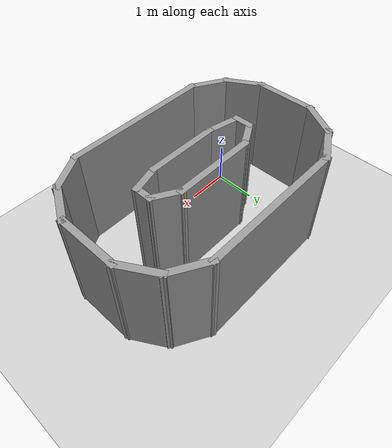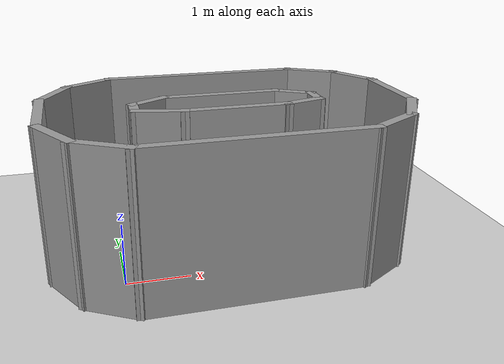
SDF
<sdf version="1.7">
 <world name="default">
  <light name="sun" type="directional">
   <pose>0 0 10 0 -0 0</pose>
   <diffuse>0.8 0.8 0.8 1</diffuse>
   <specular>0.2 0.2 0.2 1</specular>
   <attenuation>
    <range>1000</range>
    <constant>0.9</constant>
    <linear>0.01</linear>
    <quadratic>0.001</quadratic>
   </attenuation>
   <direction>-0.5 0.1 -0.9</direction>
   <spot><inner_angle>0</inner_angle><outer_angle>0</outer_angle><falloff>0</falloff></spot>
  </light>
  <model name="ground_plane">
   <static>1</static>
   <link name="link">
    <collision name="collision">
     <geometry><plane><normal>0 0 1</normal><size>100 100</size></plane></geometry>
     <surface><friction><ode><mu>100</mu><mu2>50</mu2></ode></friction></surface>
    </collision>
    <visual name="visual">
     <cast_shadows>0</cast_shadows>
     <geometry><plane><normal>0 0 1</normal><size>100 100</size></plane></geometry>
     <material>
      <script><uri>file://media/materials/scripts/gazebo.material</uri><name>Gazebo/Grey</name></script>
     </material>
    </visual>
   </link>
  </model>
  <gravity>0 0 -9.8</gravity>
  <magnetic_field>6e-06 2.3e-05 -4.2e-05</magnetic_field>
  <atmosphere type="adiabatic"/>
  <physics type="ode">
   <max_step_size>0.001</max_step_size>
   <real_time_factor>1</real_time_factor>
   <real_time_update_rate>1000</real_time_update_rate>
  </physics>
  <scene><ambient>0.4 0.4 0.4 1</ambient><background>0.7 0.7 0.7 1</background><shadows>1</shadows></scene>
  <audio><device>default</device></audio>
  <spherical_coordinates>
   <surface_model>EARTH_WGS84</surface_model>
   <latitude_deg>0</latitude_deg>
   <longitude_deg>0</longitude_deg>
   <elevation>0</elevation>
   <heading_deg>0</heading_deg>
  </spherical_coordinates>
  <model name="Untitled">
   <pose>1.79691 0.978033 0 0 -0 1.58046</pose>
   <link name="Wall_0">
    <collision name="Wall_0_Collision">
     <geometry><box><size>3.5 0.15 2.5</size></box></geometry>
     <pose>0 0 1.25 0 -0 0</pose>
    </collision>
    <visual name="Wall_0_Visual">
     <pose>0 0 1.25 0 -0 0</pose>
     <geometry><box><size>3.5 0.15 2.5</size></box></geometry>
     <material>
      <script><uri>file://media/materials/scripts/gazebo.material</uri><name>Gazebo/Grey</name></script>
      <ambient>1 1 1 1</ambient>
     </material>
     <meta><layer>0</layer></meta>
    </visual>
    <pose>-1.83612 -0 0 0 -0 -1.5708</pose>
   </link>
   <link name="Wall_10">
    <collision name="Wall_10_Collision">
     <geometry><box><size>1.5 0.15 2.5</size></box></geometry>
     <pose>0 0 1.25 0 -0 0</pose>
    </collision>
    <visual name="Wall_10_Visual">
     <pose>0 0 1.25 0 -0 0</pose>
     <geometry><box><size>1.5 0.15 2.5</size></box></geometry>
     <material>
      <script><uri>file://media/materials/scripts/gazebo.material</uri><name>Gazebo/Grey</name></script>
      <ambient>1 1 1 1</ambient>
     </material>
     <meta><layer>0</layer></meta>
    </visual>
    <pose>-0 -2.83612 0 0 -0 3.14159</pose>
   </link>
   <link name="Wall_11">
    <collision name="Wall_11_Collision">
     <geometry><box><size>1 0.15 2.5</size></box></geometry>
     <pose>0 0 1.25 0 -0 0</pose>
    </collision>
    <visual name="Wall_11_Visual">
     <pose>0 0 1.25 0 -0 0</pose>
     <geometry><box><size>1 0.15 2.5</size></box></geometry>
     <material>
      <script><uri>file://media/materials/scripts/gazebo.material</uri><name>Gazebo/Grey</name></script>
      <ambient>1 1 1 1</ambient>
     </material>
     <meta><layer>0</layer></meta>
    </visual>
    <pose>-1.04306 -2.62362 0 0 -0 2.61799</pose>
   </link>
   <link name="Wall_12">
    <collision name="Wall_12_Collision">
     <geometry><box><size>1 0.15 2.5</size></box></geometry>
     <pose>0 0 1.25 0 -0 0</pose>
    </collision>
    <visual name="Wall_12_Visual">
     <pose>0 0 1.25 0 -0 0</pose>
     <geometry><box><size>1 0.15 2.5</size></box></geometry>
     <material>
      <script><uri>file://media/materials/scripts/gazebo.material</uri><name>Gazebo/Grey</name></script>
      <ambient>1 1 1 1</ambient>
     </material>
     <meta><layer>0</layer></meta>
    </visual>
    <pose>-1.62362 -2.04306 0 0 -0 2.0944</pose>
   </link>
   <link name="Wall_15">
    <collision name="Wall_15_Collision">
     <geometry><box><size>1.75 0.15 2.5</size></box></geometry>
     <pose>0 0 1.25 0 -0 0</pose>
    </collision>
    <visual name="Wall_15_Visual">
     <pose>0 0 1.25 0 -0 0</pose>
     <geometry><box><size>1.75 0.15 2.5</size></box></geometry>
     <material>
      <script><uri>file://media/materials/scripts/gazebo.material</uri><name>Gazebo/Grey</name></script>
      <ambient>1 1 1 1</ambient>
     </material>
     <meta><layer>0</layer></meta>
    </visual>
    <pose>-0.439204 -0.060196 0 0 -0 -1.5708</pose>
   </link>
   <link name="Wall_16">
    <collision name="Wall_16_Collision">
     <geometry><box><size>0.75 0.15 2.5</size></box></geometry>
     <pose>0 0 1.25 0 -0 0</pose>
    </collision>
    <visual name="Wall_16_Visual">
     <pose>0 0 1.25 0 -0 0</pose>
     <geometry><box><size>0.75 0.15 2.5</size></box></geometry>
     <material>
      <script><uri>file://media/materials/scripts/gazebo.material</uri><name>Gazebo/Grey</name></script>
      <ambient>1 1 1 1</ambient>
     </material>
     <meta><layer>0</layer></meta>
    </visual>
    <pose>-0.361558 -1.14997 0 0 -0 -1.309</pose>
   </link>
   <link name="Wall_17">
    <collision name="Wall_17_Collision">
     <geometry><box><size>0.5 0.15 2.5</size></box></geometry>
     <pose>0 0 1.25 0 -0 0</pose>
    </collision>
    <visual name="Wall_17_Visual">
     <pose>0 0 1.25 0 -0 0</pose>
     <geometry><box><size>0.5 0.15 2.5</size></box></geometry>
     <material>
      <script><uri>file://media/materials/scripts/gazebo.material</uri><name>Gazebo/Grey</name></script>
      <ambient>1 1 1 1</ambient>
     </material>
     <meta><layer>0</layer></meta>
    </visual>
    <pose>-0.108912 -1.43975 0 0 -0 0</pose>
   </link>
   <link name="Wall_18">
    <collision name="Wall_18_Collision">
     <geometry><box><size>0.75 0.15 2.5</size></box></geometry>
     <pose>0 0 1.25 0 -0 0</pose>
    </collision>
    <visual name="Wall_18_Visual">
     <pose>0 0 1.25 0 -0 0</pose>
     <geometry><box><size>0.75 0.15 2.5</size></box></geometry>
     <material>
      <script><uri>file://media/materials/scripts/gazebo.material</uri><name>Gazebo/Grey</name></script>
      <ambient>1 1 1 1</ambient>
     </material>
     <meta><layer>0</layer></meta>
    </visual>
    <pose>0.216088 -1.17994 0 0 -0 1.0472</pose>
   </link>
   <link name="Wall_19">
    <collision name="Wall_19_Collision">
     <geometry><box><size>2 0.15 2.5</size></box></geometry>
     <pose>0 0 1.25 0 -0 0</pose>
    </collision>
    <visual name="Wall_19_Visual">
     <pose>0 0 1.25 0 -0 0</pose>
     <geometry><box><size>2 0.15 2.5</size></box></geometry>
     <material>
      <script><uri>file://media/materials/scripts/gazebo.material</uri><name>Gazebo/Grey</name></script>
      <ambient>1 1 1 1</ambient>
     </material>
     <meta><layer>0</layer></meta>
    </visual>
    <pose>0.366088 0.004864 0 0 -0 1.5708</pose>
   </link>
   <link name="Wall_2">
    <collision name="Wall_2_Collision">
     <geometry><box><size>1 0.15 2.5</size></box></geometry>
     <pose>0 0 1.25 0 -0 0</pose>
    </collision>
    <visual name="Wall_2_Visual">
     <pose>0 0 1.25 0 -0 0</pose>
     <geometry><box><size>1 0.15 2.5</size></box></geometry>
     <material>
      <script><uri>file://media/materials/scripts/gazebo.material</uri><name>Gazebo/Grey</name></script>
      <ambient>1 1 1 1</ambient>
     </material>
     <meta><layer>0</layer></meta>
    </visual>
    <pose>-1.62362 2.04306 0 0 -0 1.0472</pose>
   </link>
   <link name="Wall_20">
    <collision name="Wall_20_Collision">
     <geometry><box><size>0.75 0.15 2.5</size></box></geometry>
     <pose>0 0 1.25 0 -0 0</pose>
    </collision>
    <visual name="Wall_20_Visual">
     <pose>0 0 1.25 0 -0 0</pose>
     <geometry><box><size>0.75 0.15 2.5</size></box></geometry>
     <material>
      <script><uri>file://media/materials/scripts/gazebo.material</uri><name>Gazebo/Grey</name></script>
      <ambient>1 1 1 1</ambient>
     </material>
     <meta><layer>0</layer></meta>
    </visual>
    <pose>0.216088 1.18967 0 0 -0 2.0944</pose>
   </link>
   <link name="Wall_21">
    <collision name="Wall_21_Collision">
     <geometry><box><size>0.5 0.15 2.5</size></box></geometry>
     <pose>0 0 1.25 0 -0 0</pose>
    </collision>
    <visual name="Wall_21_Visual">
     <pose>0 0 1.25 0 -0 0</pose>
     <geometry><box><size>0.5 0.15 2.5</size></box></geometry>
     <material>
      <script><uri>file://media/materials/scripts/gazebo.material</uri><name>Gazebo/Grey</name></script>
      <ambient>1 1 1 1</ambient>
     </material>
     <meta><layer>0</layer></meta>
    </visual>
    <pose>-0.108912 1.44948 0 0 -0 3.14159</pose>
   </link>
   <link name="Wall_22">
    <collision name="Wall_22_Collision">
     <geometry><box><size>0.876467 0.15 2.5</size></box></geometry>
     <pose>0 0 1.25 0 -0 0</pose>
    </collision>
    <visual name="Wall_22_Visual">
     <pose>0 0 1.25 0 -0 0</pose>
     <geometry><box><size>0.876467 0.15 2.5</size></box></geometry>
     <material>
      <script><uri>file://media/materials/scripts/gazebo.material</uri><name>Gazebo/Grey</name></script>
      <ambient>1 1 1 1</ambient>
     </material>
     <meta><layer>0</layer></meta>
    </visual>
    <pose>-0.361558 1.09464 0 0 -0 -1.78622</pose>
   </link>
   <link name="Wall_3">
    <collision name="Wall_3_Collision">
     <geometry><box><size>1 0.15 2.5</size></box></geometry>
     <pose>0 0 1.25 0 -0 0</pose>
    </collision>
    <visual name="Wall_3_Visual">
     <pose>0 0 1.25 0 -0 0</pose>
     <geometry><box><size>1 0.15 2.5</size></box></geometry>
     <material>
      <script><uri>file://media/materials/scripts/gazebo.material</uri><name>Gazebo/Grey</name></script>
      <ambient>1 1 1 1</ambient>
     </material>
     <meta><layer>0</layer></meta>
    </visual>
    <pose>-1.04306 2.62362 0 0 -0 0.523599</pose>
   </link>
   <link name="Wall_4">
    <collision name="Wall_4_Collision">
     <geometry><box><size>1.5 0.15 2.5</size></box></geometry>
     <pose>0 0 1.25 0 -0 0</pose>
    </collision>
    <visual name="Wall_4_Visual">
     <pose>0 0 1.25 0 -0 0</pose>
     <geometry><box><size>1.5 0.15 2.5</size></box></geometry>
     <material>
      <script><uri>file://media/materials/scripts/gazebo.material</uri><name>Gazebo/Grey</name></script>
      <ambient>1 1 1 1</ambient>
     </material>
     <meta><layer>0</layer></meta>
    </visual>
    <pose>-0 2.83612 0 0 -0 0</pose>
   </link>
   <link name="Wall_5">
    <collision name="Wall_5_Collision">
     <geometry><box><size>1 0.15 2.5</size></box></geometry>
     <pose>0 0 1.25 0 -0 0</pose>
    </collision>
    <visual name="Wall_5_Visual">
     <pose>0 0 1.25 0 -0 0</pose>
     <geometry><box><size>1 0.15 2.5</size></box></geometry>
     <material>
      <script><uri>file://media/materials/scripts/gazebo.material</uri><name>Gazebo/Grey</name></script>
      <ambient>1 1 1 1</ambient>
     </material>
     <meta><layer>0</layer></meta>
    </visual>
    <pose>1.04306 2.62362 0 0 -0 -0.523599</pose>
   </link>
   <link name="Wall_6">
    <collision name="Wall_6_Collision">
     <geometry><box><size>1 0.15 2.5</size></box></geometry>
     <pose>0 0 1.25 0 -0 0</pose>
    </collision>
    <visual name="Wall_6_Visual">
     <pose>0 0 1.25 0 -0 0</pose>
     <geometry><box><size>1 0.15 2.5</size></box></geometry>
     <material>
      <script><uri>file://media/materials/scripts/gazebo.material</uri><name>Gazebo/Grey</name></script>
      <ambient>1 1 1 1</ambient>
     </material>
     <meta><layer>0</layer></meta>
    </visual>
    <pose>1.62362 2.04306 0 0 -0 -1.0472</pose>
   </link>
   <link name="Wall_7">
    <collision name="Wall_7_Collision">
     <geometry><box><size>3.5 0.15 2.5</size></box></geometry>
     <pose>0 0 1.25 0 -0 0</pose>
    </collision>
    <visual name="Wall_7_Visual">
     <pose>0 0 1.25 0 -0 0</pose>
     <geometry><box><size>3.5 0.15 2.5</size></box></geometry>
     <material>
      <script><uri>file://media/materials/scripts/gazebo.material</uri><name>Gazebo/Grey</name></script>
      <ambient>1 1 1 1</ambient>
     </material>
     <meta><layer>0</layer></meta>
    </visual>
    <pose>1.83612 -0 0 0 -0 -1.5708</pose>
   </link>
   <link name="Wall_8">
    <collision name="Wall_8_Collision">
     <geometry><box><size>1 0.15 2.5</size></box></geometry>
     <pose>0 0 1.25 0 -0 0</pose>
    </collision>
    <visual name="Wall_8_Visual">
     <pose>0 0 1.25 0 -0 0</pose>
     <geometry><box><size>1 0.15 2.5</size></box></geometry>
     <material>
      <script><uri>file://media/materials/scripts/gazebo.material</uri><name>Gazebo/Grey</name></script>
      <ambient>1 1 1 1</ambient>
     </material>
     <meta><layer>0</layer></meta>
    </visual>
    <pose>1.62362 -2.04306 0 0 -0 -2.0944</pose>
   </link>
   <link name="Wall_9">
    <collision name="Wall_9_Collision">
     <geometry><box><size>1 0.15 2.5</size></box></geometry>
     <pose>0 0 1.25 0 -0 0</pose>
    </collision>
    <visual name="Wall_9_Visual">
     <pose>0 0 1.25 0 -0 0</pose>
     <geometry><box><size>1 0.15 2.5</size></box></geometry>
     <material>
      <script><uri>file://media/materials/scripts/gazebo.material</uri><name>Gazebo/Grey</name></script>
      <ambient>1 1 1 1</ambient>
     </material>
     <meta><layer>0</layer></meta>
    </visual>
    <pose>1.04306 -2.62362 0 0 -0 -2.61799</pose>
   </link>
   <static>1</static>
  </model>
 </world>
</sdf>
